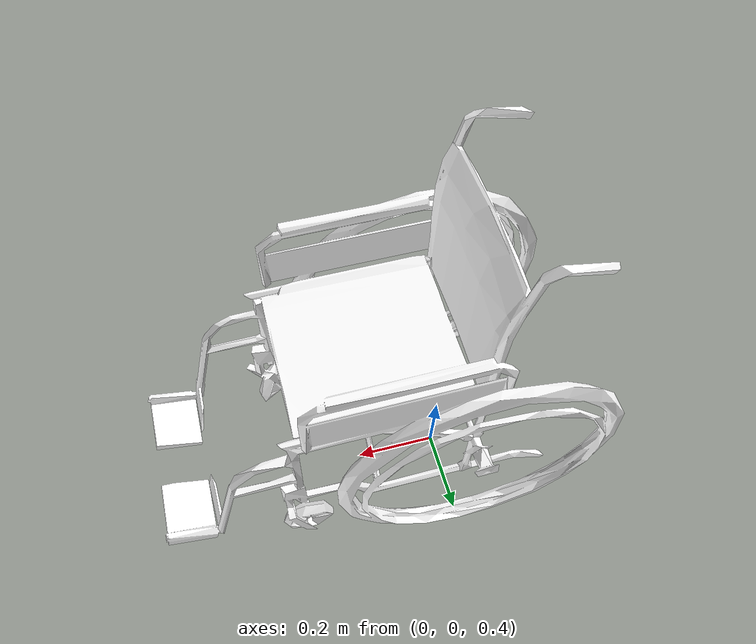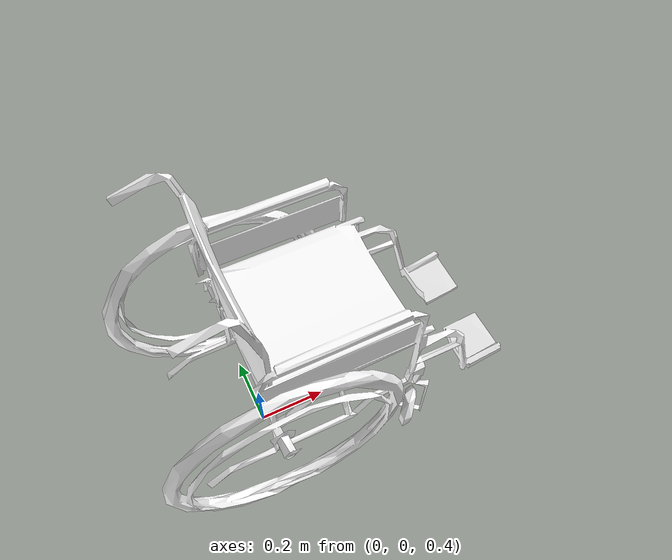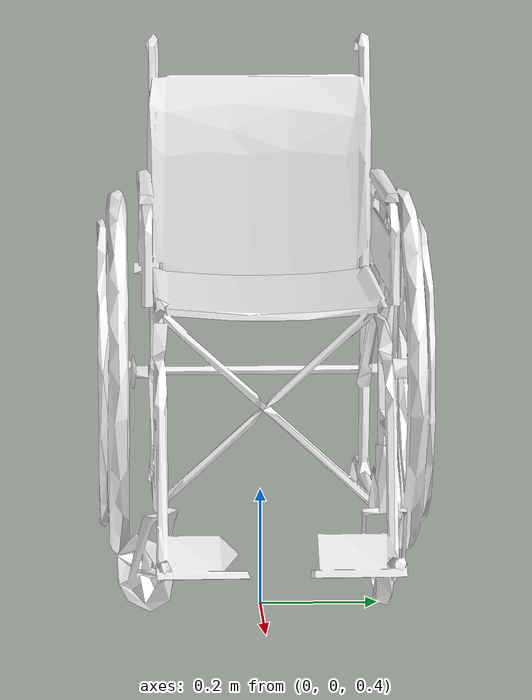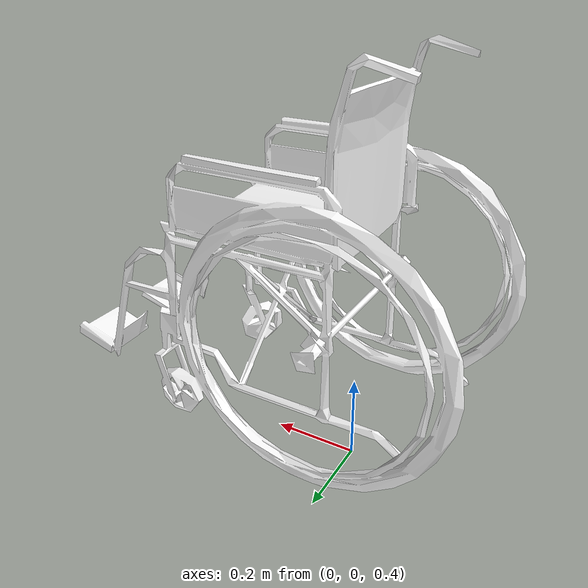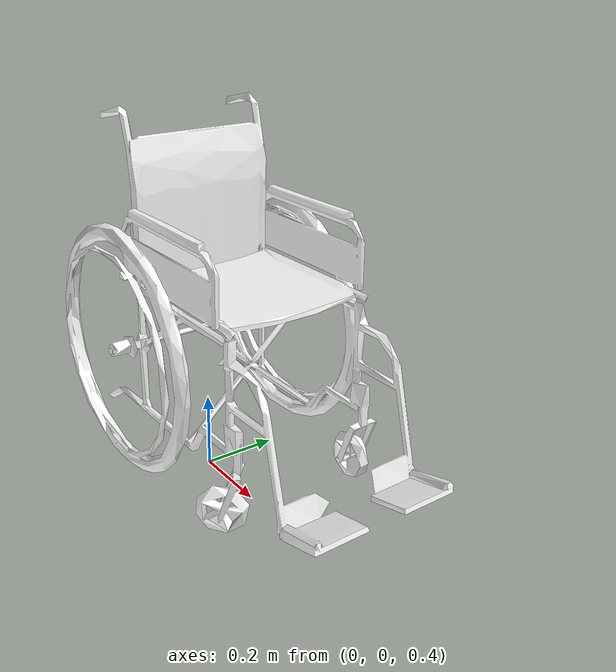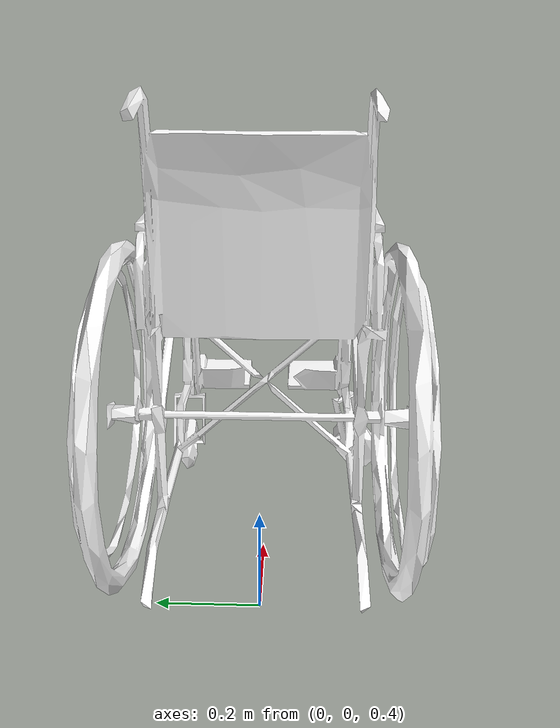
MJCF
<mujoco model="wheelchair">

    <!-- Assets: define meshes and textures -->
    <asset>
        <!-- Import the .obj file as a mesh -->
        <mesh name="wheelchair_mesh" file="meshes/Sedia Rotelle A1.stl" scale="0.03 0.03 0.03"/>

        <!-- Define textures -->

        <!-- Define a material that uses the textures -->
    </asset>

    <!-- World body: define the wheelchair model -->
    <worldbody>
        <!-- Wheelchair base -->
        <body name="wheelchair_base" pos="0 0 0.5">
            <!-- Use the mesh for the wheelchair -->
            <geom type="mesh" contype="0" conaffinity="0" density="0" rgba="1 1 1 1"
                      mesh="wheelchair_mesh"/>
            <geom name="wheelchair_geom" type="mesh" mesh="wheelchair_mesh" contype="0"/>

            <!-- Add more geometries for chair components if needed -->
        </body>
    </worldbody>
</mujoco>
